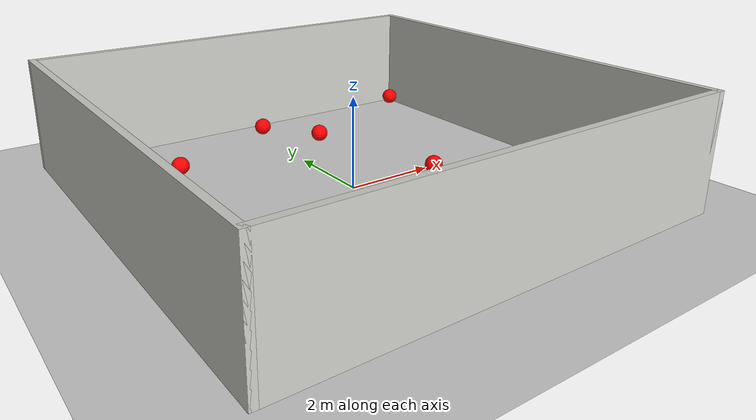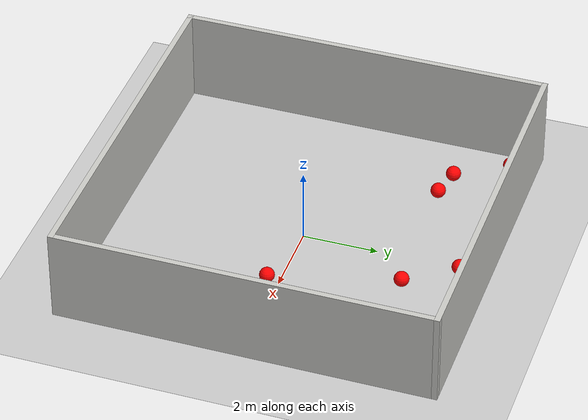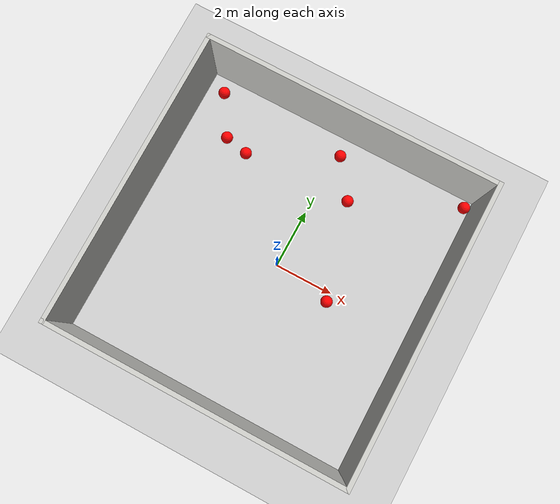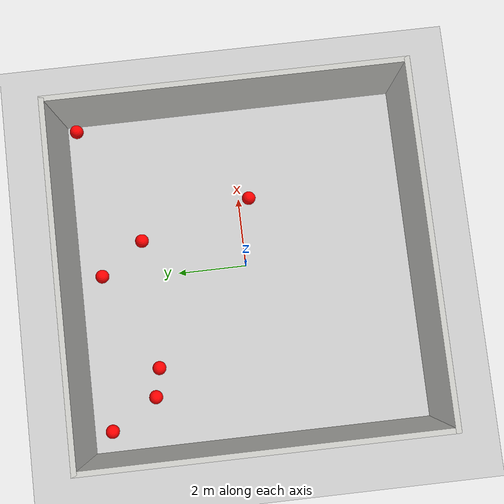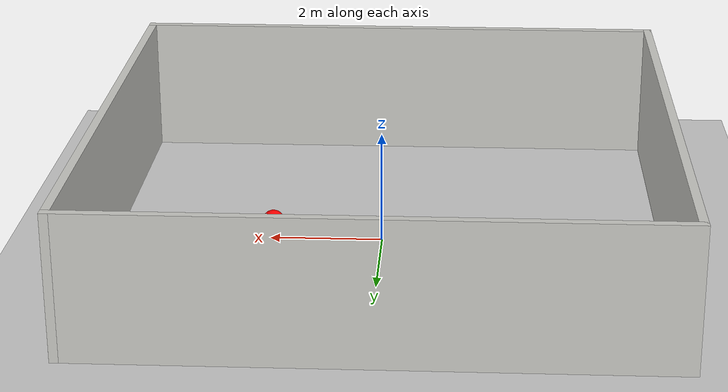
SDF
<sdf version="1.6">
 <world name="default">
  <model name="ground_plane">
   <static>1</static>
   <link name="link">
    <collision name="collision">
     <geometry><plane><normal>0 0 1</normal><size>100 100</size></plane></geometry>
     <surface><friction><ode><mu>100</mu><mu2>50</mu2></ode></friction></surface>
    </collision>
    <visual name="visual">
     <cast_shadows>0</cast_shadows>
     <geometry><plane><normal>0 0 1</normal><size>100 100</size></plane></geometry>
     <material>
      <script><uri>file://media/materials/scripts/gazebo.material</uri><name>Gazebo/Grey</name></script>
     </material>
    </visual>
   </link>
  </model>
  <model name="redball">
   <link name="link">
    <pose>0 0 0.2 0 -0 0</pose>
    <inertial>
     <mass>1</mass>
     <inertia><ixx>0.1</ixx><ixy>0</ixy><ixz>0</ixz><iyy>0.1</iyy><iyz>0</iyz><izz>0.1</izz></inertia>
    </inertial>
    <visual name="visual">
     <geometry><sphere><radius>0.2</radius></sphere></geometry>
     <material>
      <script><name>Gazebo/Grey</name><uri>file://media/materials/scripts/gazebo.material</uri></script>
      <ambient>1 0 0 1</ambient>
      <diffuse>1 0 0 1</diffuse>
      <specular>1 0 0 1</specular>
      <emissive>0 0 0 1</emissive>
      <shader type="vertex"><normal_map>__default__</normal_map></shader>
     </material>
    </visual>
    <collision name="collision">
     <geometry><sphere><radius>0.2</radius></sphere></geometry>
     <surface>
      <friction>
       <ode><mu>1</mu><mu2>1</mu2><fdir1>0 0 0</fdir1><slip1>0</slip1><slip2>0</slip2></ode>
       <torsional>
        <coefficient>1</coefficient>
        <patch_radius>0</patch_radius>
        <surface_radius>0</surface_radius>
        <use_patch_radius>1</use_patch_radius>
        <ode><slip>0</slip></ode>
       </torsional>
      </friction>
      <bounce><restitution_coefficient>0</restitution_coefficient><threshold>1e+06</threshold></bounce>
      <contact>
       <collide_without_contact>0</collide_without_contact>
       <collide_without_contact_bitmask>1</collide_without_contact_bitmask>
       <collide_bitmask>1</collide_bitmask>
       <ode>
        <soft_cfm>0</soft_cfm>
        <soft_erp>0.2</soft_erp>
        <kp>1e+13</kp>
        <kd>1</kd>
        <max_vel>0.01</max_vel>
        <min_depth>0</min_depth>
       </ode>
       <bullet>
        <split_impulse>1</split_impulse>
        <split_impulse_penetration_threshold>-0.01</split_impulse_penetration_threshold>
        <soft_cfm>0</soft_cfm>
        <soft_erp>0.2</soft_erp>
        <kp>1e+13</kp>
        <kd>1</kd>
       </bullet>
      </contact>
     </surface>
    </collision>
   </link>
   <static>0</static>
   <pose>4.553 4.57885 0.000107 1e-06 -0.032773 0</pose>
  </model>
  <model name="4wall">
   <pose>-0.096996 0.03175 0 0 -0 0</pose>
   <link name="Wall_34">
    <collision name="Wall_34_Collision">
     <geometry><box><size>10 0.15 2.5</size></box></geometry>
     <pose>0 0 1.25 0 -0 0</pose>
    </collision>
    <visual name="Wall_34_Visual">
     <pose>0 0 1.25 0 -0 0</pose>
     <geometry><box><size>10 0.15 2.5</size></box></geometry>
     <material>
      <script><uri>file://media/materials/scripts/gazebo.material</uri><name>Gazebo/CeilingTiled</name></script>
      <ambient>1 1 1 1</ambient>
     </material>
     <meta><layer>0</layer></meta>
    </visual>
    <pose>0 4.925 0 0 -0 3.14159</pose>
   </link>
   <link name="Wall_36">
    <collision name="Wall_36_Collision">
     <geometry><box><size>10 0.15 2.5</size></box></geometry>
     <pose>0 0 1.25 0 -0 0</pose>
    </collision>
    <visual name="Wall_36_Visual">
     <pose>0 0 1.25 0 -0 0</pose>
     <geometry><box><size>10 0.15 2.5</size></box></geometry>
     <material>
      <script><uri>file://media/materials/scripts/gazebo.material</uri><name>Gazebo/CeilingTiled</name></script>
      <ambient>1 1 1 1</ambient>
     </material>
     <meta><layer>0</layer></meta>
    </visual>
    <pose>-4.925 0 0 0 0 -1.5708</pose>
   </link>
   <link name="Wall_37">
    <collision name="Wall_37_Collision">
     <geometry><box><size>10 0.15 2.5</size></box></geometry>
     <pose>0 0 1.25 0 -0 0</pose>
    </collision>
    <visual name="Wall_37_Visual">
     <pose>0 0 1.25 0 -0 0</pose>
     <geometry><box><size>10 0.15 2.5</size></box></geometry>
     <material>
      <script><uri>file://media/materials/scripts/gazebo.material</uri><name>Gazebo/CeilingTiled</name></script>
      <ambient>1 1 1 1</ambient>
     </material>
     <meta><layer>0</layer></meta>
    </visual>
    <pose>0 -4.925 0 0 -0 0</pose>
   </link>
   <link name="Wall_38">
    <collision name="Wall_38_Collision">
     <geometry><box><size>10 0.15 2.5</size></box></geometry>
     <pose>0 0 1.25 0 -0 0</pose>
    </collision>
    <visual name="Wall_38_Visual">
     <pose>0 0 1.25 0 -0 0</pose>
     <geometry><box><size>10 0.15 2.5</size></box></geometry>
     <material>
      <script><uri>file://media/materials/scripts/gazebo.material</uri><name>Gazebo/CeilingTiled</name></script>
      <ambient>1 1 1 1</ambient>
     </material>
     <meta><layer>0</layer></meta>
    </visual>
    <pose>4.925 0 0 0 -0 1.5708</pose>
   </link>
   <static>1</static>
  </model>
  <model name="redball_2_clone_4">
   <link name="link">
    <pose>0 0 0.2 0 -0 0</pose>
    <inertial>
     <mass>1</mass>
     <inertia><ixx>0.1</ixx><ixy>0</ixy><ixz>0</ixz><iyy>0.1</iyy><iyz>0</iyz><izz>0.1</izz></inertia>
    </inertial>
    <visual name="visual">
     <geometry><sphere><radius>0.2</radius></sphere></geometry>
     <material>
      <script><name>Gazebo/Grey</name><uri>file://media/materials/scripts/gazebo.material</uri></script>
      <ambient>1 0 0 1</ambient>
      <diffuse>1 0 0 1</diffuse>
      <specular>1 0 0 1</specular>
      <emissive>0 0 0 1</emissive>
      <shader type="vertex"><normal_map>__default__</normal_map></shader>
     </material>
    </visual>
    <collision name="collision">
     <geometry><sphere><radius>0.2</radius></sphere></geometry>
     <surface>
      <friction>
       <ode><mu>1</mu><mu2>1</mu2><fdir1>0 0 0</fdir1><slip1>0</slip1><slip2>0</slip2></ode>
       <torsional>
        <coefficient>1</coefficient>
        <patch_radius>0</patch_radius>
        <surface_radius>0</surface_radius>
        <use_patch_radius>1</use_patch_radius>
        <ode><slip>0</slip></ode>
       </torsional>
      </friction>
      <bounce><restitution_coefficient>0</restitution_coefficient><threshold>1e+06</threshold></bounce>
      <contact>
       <collide_without_contact>0</collide_without_contact>
       <collide_without_contact_bitmask>1</collide_without_contact_bitmask>
       <collide_bitmask>1</collide_bitmask>
       <ode>
        <soft_cfm>0</soft_cfm>
        <soft_erp>0.2</soft_erp>
        <kp>1e+13</kp>
        <kd>1</kd>
        <max_vel>0.01</max_vel>
        <min_depth>0</min_depth>
       </ode>
       <bullet>
        <split_impulse>1</split_impulse>
        <split_impulse_penetration_threshold>-0.01</split_impulse_penetration_threshold>
        <soft_cfm>0</soft_cfm>
        <soft_erp>0.2</soft_erp>
        <kp>1e+13</kp>
        <kd>1</kd>
       </bullet>
      </contact>
     </surface>
    </collision>
   </link>
   <static>0</static>
   <pose>-4.34673 4.33403 0 0 -0 0</pose>
  </model>
  <model name="redball_2_clone_9">
   <link name="link">
    <pose>0 0 0.2 0 -0 0</pose>
    <inertial>
     <mass>1</mass>
     <inertia><ixx>0.1</ixx><ixy>0</ixy><ixz>0</ixz><iyy>0.1</iyy><iyz>0</iyz><izz>0.1</izz></inertia>
    </inertial>
    <visual name="visual">
     <geometry><sphere><radius>0.2</radius></sphere></geometry>
     <material>
      <script><name>Gazebo/Grey</name><uri>file://media/materials/scripts/gazebo.material</uri></script>
      <ambient>1 0 0 1</ambient>
      <diffuse>1 0 0 1</diffuse>
      <specular>1 0 0 1</specular>
      <emissive>0 0 0 1</emissive>
      <shader type="vertex"><normal_map>__default__</normal_map></shader>
     </material>
    </visual>
    <collision name="collision">
     <geometry><sphere><radius>0.2</radius></sphere></geometry>
     <surface>
      <friction>
       <ode><mu>1</mu><mu2>1</mu2><fdir1>0 0 0</fdir1><slip1>0</slip1><slip2>0</slip2></ode>
       <torsional>
        <coefficient>1</coefficient>
        <patch_radius>0</patch_radius>
        <surface_radius>0</surface_radius>
        <use_patch_radius>1</use_patch_radius>
        <ode><slip>0</slip></ode>
       </torsional>
      </friction>
      <bounce><restitution_coefficient>0</restitution_coefficient><threshold>1e+06</threshold></bounce>
      <contact>
       <collide_without_contact>0</collide_without_contact>
       <collide_without_contact_bitmask>1</collide_without_contact_bitmask>
       <collide_bitmask>1</collide_bitmask>
       <ode>
        <soft_cfm>0</soft_cfm>
        <soft_erp>0.2</soft_erp>
        <kp>1e+13</kp>
        <kd>1</kd>
        <max_vel>0.01</max_vel>
        <min_depth>0</min_depth>
       </ode>
       <bullet>
        <split_impulse>1</split_impulse>
        <split_impulse_penetration_threshold>-0.01</split_impulse_penetration_threshold>
        <soft_cfm>0</soft_cfm>
        <soft_erp>0.2</soft_erp>
        <kp>1e+13</kp>
        <kd>1</kd>
       </bullet>
      </contact>
     </surface>
    </collision>
   </link>
   <static>0</static>
   <pose>-3.51134 3 0 0 -0 0</pose>
  </model>
  <model name="redball_0_clone_1">
   <link name="link">
    <pose>0 0 0.2 0 -0 0</pose>
    <inertial>
     <mass>1</mass>
     <inertia><ixx>0.1</ixx><ixy>0</ixy><ixz>0</ixz><iyy>0.1</iyy><iyz>0</iyz><izz>0.1</izz></inertia>
    </inertial>
    <visual name="visual">
     <geometry><sphere><radius>0.2</radius></sphere></geometry>
     <material>
      <script><name>Gazebo/Grey</name><uri>file://media/materials/scripts/gazebo.material</uri></script>
      <ambient>1 0 0 1</ambient>
      <diffuse>1 0 0 1</diffuse>
      <specular>1 0 0 1</specular>
      <emissive>0 0 0 1</emissive>
      <shader type="vertex"><normal_map>__default__</normal_map></shader>
     </material>
    </visual>
    <collision name="collision">
     <geometry><sphere><radius>0.2</radius></sphere></geometry>
     <surface>
      <friction>
       <ode><mu>1</mu><mu2>1</mu2><fdir1>0 0 0</fdir1><slip1>0</slip1><slip2>0</slip2></ode>
       <torsional>
        <coefficient>1</coefficient>
        <patch_radius>0</patch_radius>
        <surface_radius>0</surface_radius>
        <use_patch_radius>1</use_patch_radius>
        <ode><slip>0</slip></ode>
       </torsional>
      </friction>
      <bounce><restitution_coefficient>0</restitution_coefficient><threshold>1e+06</threshold></bounce>
      <contact>
       <collide_without_contact>0</collide_without_contact>
       <collide_without_contact_bitmask>1</collide_without_contact_bitmask>
       <collide_bitmask>1</collide_bitmask>
       <ode>
        <soft_cfm>0</soft_cfm>
        <soft_erp>0.2</soft_erp>
        <kp>1e+13</kp>
        <kd>1</kd>
        <max_vel>0.01</max_vel>
        <min_depth>0</min_depth>
       </ode>
       <bullet>
        <split_impulse>1</split_impulse>
        <split_impulse_penetration_threshold>-0.01</split_impulse_penetration_threshold>
        <soft_cfm>0</soft_cfm>
        <soft_erp>0.2</soft_erp>
        <kp>1e+13</kp>
        <kd>1</kd>
       </bullet>
      </contact>
     </surface>
    </collision>
   </link>
   <static>0</static>
   <pose>1.97749 -0.317368 7.4e-05 -0.02714 0 0</pose>
  </model>
  <model name="redball_0_clone_2">
   <link name="link">
    <pose>0 0 0.2 0 -0 0</pose>
    <inertial>
     <mass>1</mass>
     <inertia><ixx>0.1</ixx><ixy>0</ixy><ixz>0</ixz><iyy>0.1</iyy><iyz>0</iyz><izz>0.1</izz></inertia>
    </inertial>
    <visual name="visual">
     <geometry><sphere><radius>0.2</radius></sphere></geometry>
     <material>
      <script><name>Gazebo/Grey</name><uri>file://media/materials/scripts/gazebo.material</uri></script>
      <ambient>1 0 0 1</ambient>
      <diffuse>1 0 0 1</diffuse>
      <specular>1 0 0 1</specular>
      <emissive>0 0 0 1</emissive>
      <shader type="vertex"><normal_map>__default__</normal_map></shader>
     </material>
    </visual>
    <collision name="collision">
     <geometry><sphere><radius>0.2</radius></sphere></geometry>
     <surface>
      <friction>
       <ode><mu>1</mu><mu2>1</mu2><fdir1>0 0 0</fdir1><slip1>0</slip1><slip2>0</slip2></ode>
       <torsional>
        <coefficient>1</coefficient>
        <patch_radius>0</patch_radius>
        <surface_radius>0</surface_radius>
        <use_patch_radius>1</use_patch_radius>
        <ode><slip>0</slip></ode>
       </torsional>
      </friction>
      <bounce><restitution_coefficient>0</restitution_coefficient><threshold>1e+06</threshold></bounce>
      <contact>
       <collide_without_contact>0</collide_without_contact>
       <collide_without_contact_bitmask>1</collide_without_contact_bitmask>
       <collide_bitmask>1</collide_bitmask>
       <ode>
        <soft_cfm>0</soft_cfm>
        <soft_erp>0.2</soft_erp>
        <kp>1e+13</kp>
        <kd>1</kd>
        <max_vel>0.01</max_vel>
        <min_depth>0</min_depth>
       </ode>
       <bullet>
        <split_impulse>1</split_impulse>
        <split_impulse_penetration_threshold>-0.01</split_impulse_penetration_threshold>
        <soft_cfm>0</soft_cfm>
        <soft_erp>0.2</soft_erp>
        <kp>1e+13</kp>
        <kd>1</kd>
       </bullet>
      </contact>
     </surface>
    </collision>
   </link>
   <static>0</static>
   <pose>-2.69357 2.81557 7.4e-05 -0.02714 0 0</pose>
  </model>
  <model name="redball_0_clone_3">
   <link name="link">
    <pose>0 0 0.2 0 -0 0</pose>
    <inertial>
     <mass>1</mass>
     <inertia><ixx>0.1</ixx><ixy>0</ixy><ixz>0</ixz><iyy>0.1</iyy><iyz>0</iyz><izz>0.1</izz></inertia>
    </inertial>
    <visual name="visual">
     <geometry><sphere><radius>0.2</radius></sphere></geometry>
     <material>
      <script><name>Gazebo/Grey</name><uri>file://media/materials/scripts/gazebo.material</uri></script>
      <ambient>1 0 0 1</ambient>
      <diffuse>1 0 0 1</diffuse>
      <specular>1 0 0 1</specular>
      <emissive>0 0 0 1</emissive>
      <shader type="vertex"><normal_map>__default__</normal_map></shader>
     </material>
    </visual>
    <collision name="collision">
     <geometry><sphere><radius>0.2</radius></sphere></geometry>
     <surface>
      <friction>
       <ode><mu>1</mu><mu2>1</mu2><fdir1>0 0 0</fdir1><slip1>0</slip1><slip2>0</slip2></ode>
       <torsional>
        <coefficient>1</coefficient>
        <patch_radius>0</patch_radius>
        <surface_radius>0</surface_radius>
        <use_patch_radius>1</use_patch_radius>
        <ode><slip>0</slip></ode>
       </torsional>
      </friction>
      <bounce><restitution_coefficient>0</restitution_coefficient><threshold>1e+06</threshold></bounce>
      <contact>
       <collide_without_contact>0</collide_without_contact>
       <collide_without_contact_bitmask>1</collide_without_contact_bitmask>
       <collide_bitmask>1</collide_bitmask>
       <ode>
        <soft_cfm>0</soft_cfm>
        <soft_erp>0.2</soft_erp>
        <kp>1e+13</kp>
        <kd>1</kd>
        <max_vel>0.01</max_vel>
        <min_depth>0</min_depth>
       </ode>
       <bullet>
        <split_impulse>1</split_impulse>
        <split_impulse_penetration_threshold>-0.01</split_impulse_penetration_threshold>
        <soft_cfm>0</soft_cfm>
        <soft_erp>0.2</soft_erp>
        <kp>1e+13</kp>
        <kd>1</kd>
       </bullet>
      </contact>
     </surface>
    </collision>
   </link>
   <static>0</static>
   <pose>0.138603 4.21321 7.4e-05 -0.02714 0 0</pose>
  </model>
  <model name="redball_0_clone_5">
   <link name="link">
    <pose>0 0 0.2 0 -0 0</pose>
    <inertial>
     <mass>1</mass>
     <inertia><ixx>0.1</ixx><ixy>0</ixy><ixz>0</ixz><iyy>0.1</iyy><iyz>0</iyz><izz>0.1</izz></inertia>
    </inertial>
    <visual name="visual">
     <geometry><sphere><radius>0.2</radius></sphere></geometry>
     <material>
      <script><name>Gazebo/Grey</name><uri>file://media/materials/scripts/gazebo.material</uri></script>
      <ambient>1 0 0 1</ambient>
      <diffuse>1 0 0 1</diffuse>
      <specular>1 0 0 1</specular>
      <emissive>0 0 0 1</emissive>
      <shader type="vertex"><normal_map>__default__</normal_map></shader>
     </material>
    </visual>
    <collision name="collision">
     <geometry><sphere><radius>0.2</radius></sphere></geometry>
     <surface>
      <friction>
       <ode><mu>1</mu><mu2>1</mu2><fdir1>0 0 0</fdir1><slip1>0</slip1><slip2>0</slip2></ode>
       <torsional>
        <coefficient>1</coefficient>
        <patch_radius>0</patch_radius>
        <surface_radius>0</surface_radius>
        <use_patch_radius>1</use_patch_radius>
        <ode><slip>0</slip></ode>
       </torsional>
      </friction>
      <bounce><restitution_coefficient>0</restitution_coefficient><threshold>1e+06</threshold></bounce>
      <contact>
       <collide_without_contact>0</collide_without_contact>
       <collide_without_contact_bitmask>1</collide_without_contact_bitmask>
       <collide_bitmask>1</collide_bitmask>
       <ode>
        <soft_cfm>0</soft_cfm>
        <soft_erp>0.2</soft_erp>
        <kp>1e+13</kp>
        <kd>1</kd>
        <max_vel>0.01</max_vel>
        <min_depth>0</min_depth>
       </ode>
       <bullet>
        <split_impulse>1</split_impulse>
        <split_impulse_penetration_threshold>-0.01</split_impulse_penetration_threshold>
        <soft_cfm>0</soft_cfm>
        <soft_erp>0.2</soft_erp>
        <kp>1e+13</kp>
        <kd>1</kd>
       </bullet>
      </contact>
     </surface>
    </collision>
   </link>
   <static>0</static>
   <pose>1.05653 2.95577 7.4e-05 -0.02714 0 0</pose>
  </model>
 </world>
</sdf>
